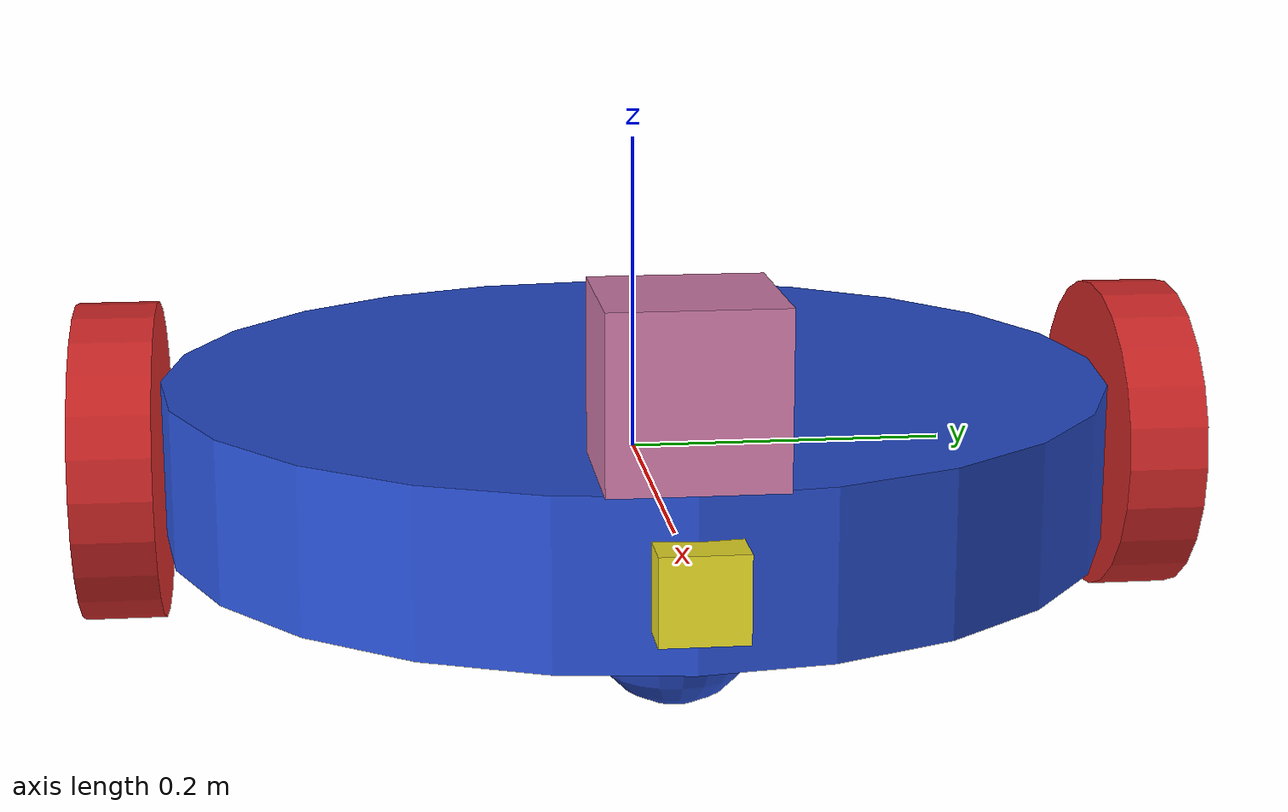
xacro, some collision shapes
<?xml version='1.0'?>

<robot name="my_robot" xmlns:xacro="http://www.ros.org/wiki/xacro">

  <xacro:include filename="$(find my_robot)/urdf/my_robot.gazebo" />

  <link name="robot_footprint"></link>

  <joint name="robot_footprint_joint" type="fixed">
    <origin xyz="0 0 0" rpy="0 0 0" />
    <parent link="robot_footprint"/>
    <child link="chassis" />
  </joint>

  <!-- Chassis -->
  <link name='chassis'>
    <pose>0 0 0.1 0 0 0</pose>

    <inertial>
      <mass value="15.0"/>
      <origin xyz="0.0 0 0" rpy=" 0 0 0"/>
      <inertia
          ixx="0.1" ixy="0" ixz="0"
          iyy="0.1" iyz="0"
          izz="0.1"
      />
    </inertial>

    <collision name='collision'>
      <origin xyz="0 0 0" rpy=" 0 0 0"/>
      <geometry>
        <cylinder radius=".3" length="0.1"/>
      </geometry>
    </collision>

    <visual>
      <origin xyz="0 0 0" rpy=" 0 0 0"/>
      <geometry>
        <cylinder radius=".3" length="0.1"/>
      </geometry>
    </visual>

    <collision name='back_caster_collision'>
      <origin xyz="-0.2 0 -0.05" rpy=" 0 0 0"/>
      <geometry>
        <sphere radius="0.05"/>
      </geometry>
    </collision>

    <visual name='back_caster_visual'>
      <origin xyz="-0.2 0 -0.05" rpy=" 0 0 0"/>
      <geometry>
        <sphere radius="0.05"/>
      </geometry>
    </visual>

    <collision name='front_caster_collision'>
      <origin xyz="0.2 0 -0.05" rpy=" 0 0 0"/>
      <geometry>
        <sphere radius="0.05"/>
      </geometry>
    </collision>

    <visual name='front_caster_visual'>
      <origin xyz="0.2 0 -0.05" rpy=" 0 0 0"/>
      <geometry>
        <sphere radius="0.05"/>
      </geometry>
    </visual>

  </link>
  <gazebo reference="chassis">
    <material>Gazebo/Blue</material>
  </gazebo>

  <!-- Wheels -->
  <link name='left_wheel'>
    <collision name='left_wheel_collision'>
      <origin xyz="0 0 0" rpy="0 1.5707 1.5707"/>
      <geometry>
        <cylinder radius="0.1" length="0.05"/>
      </geometry>
    </collision>

    <inertial>
      <mass value="5.0"/>
      <origin xyz="0 0 0" rpy="0 1.5707 1.5707"/>
      <inertia
          ixx="0.1" ixy="0" ixz="0"
          iyy="0.1" iyz="0"
          izz="0.1"
      />
    </inertial>

    <visual name='left_wheel_visual'>
      <origin xyz="0 0 0" rpy="0 1.5707 1.5707"/>
      <geometry>
        <cylinder radius="0.1" length="0.05"/>
      </geometry>
    </visual>

  </link>

  <link name='right_wheel'>
    <collision name='right_wheel_collision'>
      <origin xyz="0 0 0" rpy="0 1.5707 1.5707"/>
      <geometry>
        <cylinder radius="0.1" length="0.05"/>
      </geometry>
    </collision>

    <inertial>
      <mass value="5.0"/>
      <origin xyz="0 0 0" rpy="0 1.5707 1.5707"/>
      <inertia
          ixx="0.1" ixy="0" ixz="0"
          iyy="0.1" iyz="0"
          izz="0.1"
      />
    </inertial>

    <visual name='right_wheel_visual'>
      <origin xyz="0 0 0" rpy="0 1.5707 1.5707"/>
      <geometry>
        <cylinder radius="0.1" length="0.05"/>
      </geometry>
    </visual>

  </link>

  <gazebo reference="left_wheel">
    <material>Gazebo/Red</material>
  </gazebo>
  <gazebo reference="right_wheel">
    <material>Gazebo/Red</material>
  </gazebo>

  <!-- Wheel joints -->
  <joint type="continuous" name="left_wheel_hinge">
    <origin xyz="0 0.325 0" rpy="0 0 0"/>
    <child link="left_wheel"/>
    <parent link="chassis"/>
    <axis xyz="0 1 0" rpy="0 0 0"/>
    <limit effort="10000" velocity="1000"/>
    <dynamics damping="1.0" friction="1.0"/>
  </joint>

  <joint type="continuous" name="right_wheel_hinge">
    <origin xyz="0 -0.325 0" rpy="0 0 0"/>
    <child link="right_wheel"/>
    <parent link="chassis"/>
    <axis xyz="0 1 0" rpy="0 0 0"/>
    <limit effort="10000" velocity="1000"/>
    <dynamics damping="1.0" friction="1.0"/>
  </joint>

  <!-- Camera -->
  <link name="camera_link">
    <collision name='camera_collision'>
      <origin xyz="0 0 0" rpy="0 0 0"/>
      <geometry>
        <box size="0.05 0.05 0.05"/>
      </geometry>
    </collision>

    <inertial>
      <mass value="0.1"/>
      <origin xyz="0 0 0" rpy="0 0 0"/>
      <inertia
          ixx="1e-6" ixy="0" ixz="0"
          iyy="1e-6" iyz="0"
          izz="1e-6"
      />
    </inertial>

    <visual name='camera_visual'>
      <origin xyz="0 0 0" rpy="0 0 0"/>
      <geometry>
        <box size="0.05 0.05 0.05"/>
      </geometry>
    </visual>
  </link>

  <gazebo reference="camera_link">
    <material>Gazebo/Yellow</material>
  </gazebo>

  <!-- Camera joint -->
  <joint type="fixed" name="camera_joint">
    <origin xyz="0.3 0 0" rpy="0 0 0"/>
    <child link="camera_link"/>
    <parent link="chassis"/>
    <axis xyz="0 1 0" rpy="0 0 0"/>
  </joint>

  <joint name="camera_optical_joint" type="fixed">
    <origin xyz="0 0 0" rpy="-1.5707 0 -1.5707"/>
    <parent link="camera_link"/>
    <child link="camera_link_optical"/>
  </joint>

  <link name="camera_link_optical">
  </link>

  <!-- Lidar -->
  <link name="hokuyo">
    <collision name='hokuyo_collision'>
      <origin xyz="0 0 0" rpy="0 0 0"/>
      <geometry>
        <box size="0.1 0.1 0.1"/>
      </geometry>
    </collision>

    <inertial>
      <mass value="1e-5"/>
      <origin xyz="0 0 0" rpy="0 0 0"/>
      <inertia
          ixx="1e-6" ixy="0" ixz="0"
          iyy="1e-6" iyz="0"
          izz="1e-6"
      />
    </inertial>

    <visual name='hokuyo_visual'>
      <origin xyz="0 0 0" rpy="0 0 0"/>
      <geometry>
        <mesh filename="package://my_robot/meshes/hokuyo.dae"/>
      </geometry>
    </visual>
  </link>

  <!-- Lidar joint -->
  <joint type="fixed" name="hokuyo_joint">
    <origin xyz="0.25 0 0.1" rpy="0 0 0"/>
    <child link="hokuyo"/>
    <parent link="chassis"/>
    <axis xyz="0 1 0" rpy="0 0 0"/>
  </joint>

</robot>
